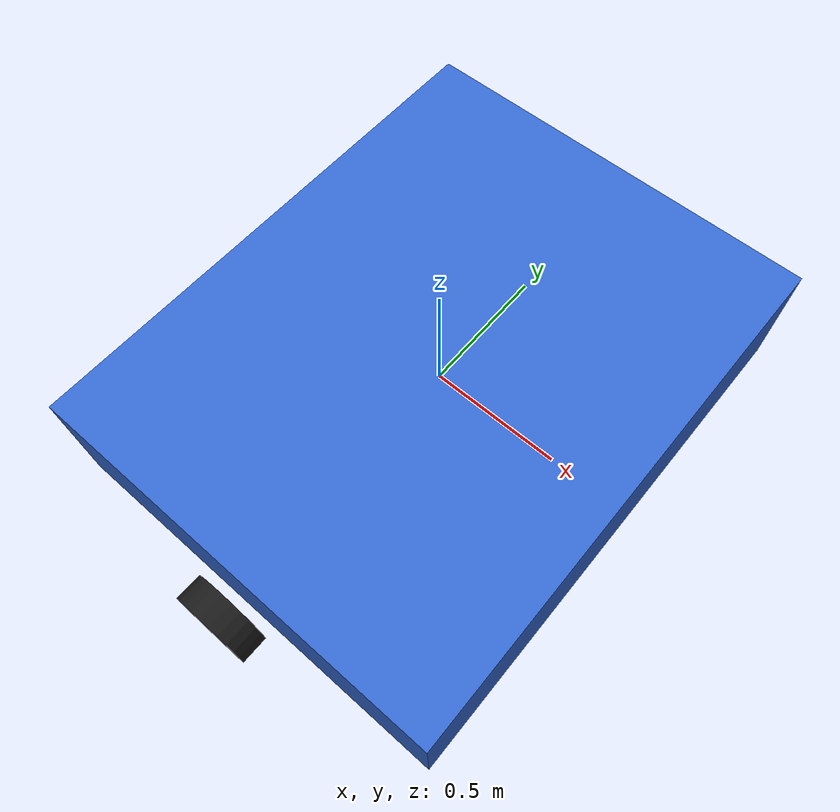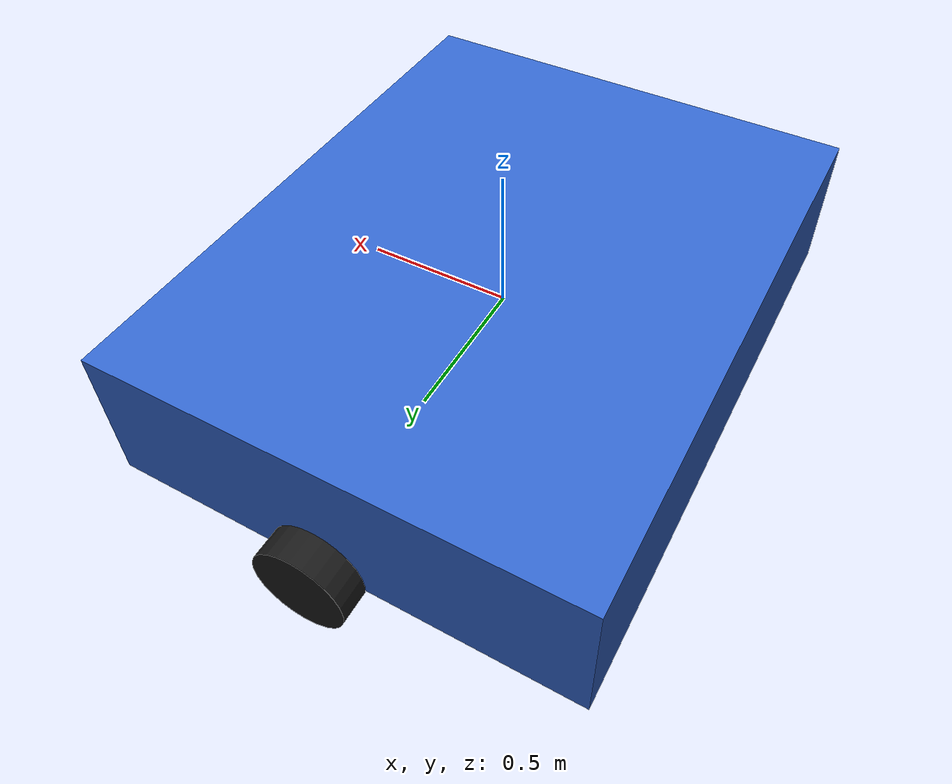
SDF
<?xml version="1.0" ?>
<sdf version="1.6">
  <model name="diff_robot">
    <static>false</static>
    <link name="base_link">
      <inertial>
        <mass>50.0</mass>
        <inertia>
          <ixx>14.583</ixx><iyy>8.333</iyy><izz>22.583</izz>
          <ixy>0</ixy><ixz>0</ixz><iyz>0</iyz>
        </inertia>
      </inertial>
      <collision name="base_collision">
        <geometry>
          <box><size>1.6 2.0 0.5</size></box>
        </geometry>
      </collision>
      <visual name="base_visual">
        <geometry>
          <box><size>1.6 2.0 0.5</size></box>
        </geometry>
        <material>
          <ambient>0.2 0.4 0.8 1</ambient>
          <diffuse>0.2 0.4 0.8 1</diffuse>
        </material>
      </visual>
      <sensor name="lidar2d" type="ray">
        <pose>0.8 0 0.3 0 0 0</pose>
        <ray>
          <scan>
            <horizontal>
              <samples>100</samples>
              <resolution>1</resolution>
              <min_angle>-1.5707963</min_angle>
              <max_angle>1.5707963</max_angle>
            </horizontal>
          </scan>
          <range>
            <min>0.05</min>
            <max>10.0</max>
            <resolution>0.01</resolution>
          </range>
        </ray>
        <plugin name="lidar_plugin" filename="libgazebo_ros_ray_sensor.so">
          <ros>
            <namespace>/robot</namespace>
            <remapping>~/out:=scan</remapping>
          </ros>
          <output_type>sensor_msgs/LaserScan</output_type>
          <frame_name>base_link</frame_name>
        </plugin>
        <always_on>true</always_on>
        <update_rate>10</update_rate>
      </sensor>
    </link>
    <plugin name="diff_drive" filename="libgazebo_ros_diff_drive.so">
      <ros>
        <namespace>/robot</namespace>
      </ros>
      <left_joint>left_wheel_joint</left_joint>
      <right_joint>right_wheel_joint</right_joint>
      <wheel_separation>2.2</wheel_separation>
      <wheel_diameter>0.3</wheel_diameter>
      <max_wheel_torque>100</max_wheel_torque>
      <max_wheel_acceleration>10.0</max_wheel_acceleration>
      <command_topic>cmd_vel</command_topic>
      <odometry_topic>odom</odometry_topic>
      <odometry_frame>odom</odometry_frame>
      <robot_base_frame>base_link</robot_base_frame>
      <publish_odom>true</publish_odom>
      <publish_odom_tf>true</publish_odom_tf>
      <publish_wheel_tf>false</publish_wheel_tf>
    </plugin>
    <link name="left_wheel_link">
      <pose relative_to="base_link">0 1.1 -0.1 1.5707963 0 0</pose>
      <inertial><mass>2</mass><inertia><ixx>0.01</ixx><iyy>0.01</iyy><izz>0.01</izz></inertia></inertial>
      <collision name="collision"><geometry><cylinder><radius>0.15</radius><length>0.1</length></cylinder></geometry></collision>
      <visual name="visual"><geometry><cylinder><radius>0.15</radius><length>0.1</length></cylinder></geometry><material><ambient>0.1 0.1 0.1 1</ambient></material></visual>
    </link>
    <joint name="left_wheel_joint" type="revolute">
      <parent>base_link</parent><child>left_wheel_link</child>
      <axis><xyz>0 1 0</xyz></axis>
      <limit><lower>-1e16</lower><upper>1e16</upper></limit>
    </joint>
    <link name="right_wheel_link">
      <pose relative_to="base_link">0 -1.1 -0.1 1.5707963 0 0</pose>
      <inertial><mass>2</mass><inertia><ixx>0.01</ixx><iyy>0.01</iyy><izz>0.01</izz></inertia></inertial>
      <collision name="collision"><geometry><cylinder><radius>0.15</radius><length>0.1</length></cylinder></geometry></collision>
      <visual name="visual"><geometry><cylinder><radius>0.15</radius><length>0.1</length></cylinder></geometry><material><ambient>0.1 0.1 0.1 1</ambient></material></visual>
    </link>
    <joint name="right_wheel_joint" type="revolute">
      <parent>base_link</parent><child>right_wheel_link</child>
      <axis><xyz>0 1 0</xyz></axis>
      <limit><lower>-1e16</lower><upper>1e16</upper></limit>
    </joint>
  </model>
</sdf>
